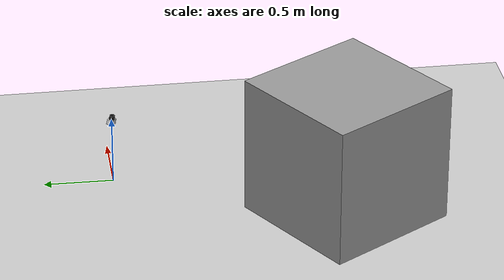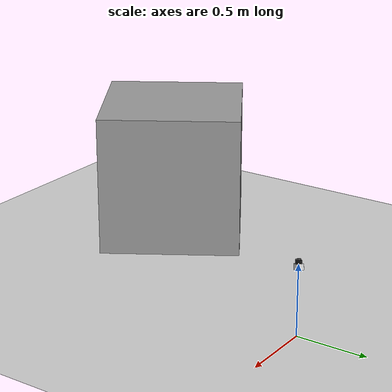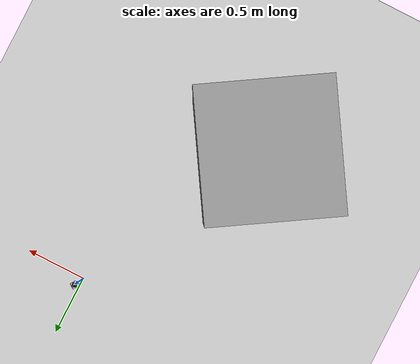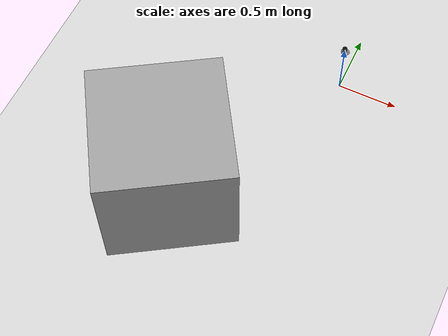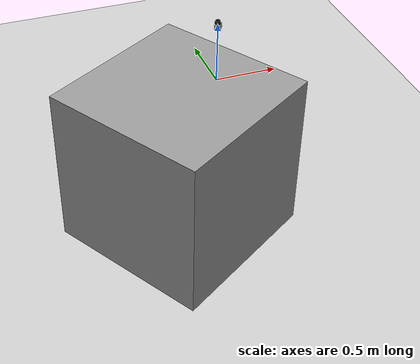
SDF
<?xml version="1.0" ?>
<sdf version="1.5">
  <world name="default">
    <include>
      <uri>model://sun</uri>
    </include>

    <include>
      <uri>model://ground_plane</uri>
    </include>

    <include>
      <uri>model://break_beam</uri>
      <pose>0 0 0.5 0.2 0 -0.6</pose>
    </include>
    <model name='unit_box'>
      <pose frame=''>-0.83 -1.55 0.6 1.57 0 0.557</pose>
      <link name='link'>
        <inertial>
          <mass>1</mass>
          <inertia>
            <ixx>0.166667</ixx>
            <ixy>0</ixy>
            <ixz>0</ixz>
            <iyy>0.166667</iyy>
            <iyz>0</iyz>
            <izz>0.166667</izz>
          </inertia>
        </inertial>
        <collision name='collision'>
          <geometry>
            <box>
              <size>0.999998 0.999998 0.999998</size>
            </box>
          </geometry>
          <max_contacts>10</max_contacts>
          <surface>
            <contact>
              <ode/>
            </contact>
            <bounce/>
            <friction>
              <torsional>
                <ode/>
              </torsional>
              <ode/>
            </friction>
          </surface>
        </collision>
        <visual name='visual'>
          <geometry>
            <box>
              <size>0.999998 0.999998 0.999998</size>
            </box>
          </geometry>
          <material>
            <script>
              <name>Gazebo/Grey</name>
              <uri>file://media/materials/scripts/gazebo.material</uri>
            </script>
          </material>
        </visual>
        <self_collide>0</self_collide>
        <kinematic>0</kinematic>
        <gravity>1</gravity>
      </link>
    </model>
  </world>
</sdf>

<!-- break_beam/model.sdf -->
<sdf version="1.6">
  <model name="proximity_sick_wl9l-3">
    <link name="link">
      <sensor name="break_beam" type="ray">
        <pose>0.025 0 0 0 0 0</pose>
        <plugin name="proximity_ray_plugin" filename="libROSProximityRayPlugin.so" >
          <robotNamespace>ariac</robotNamespace>
          <time_delay>0.05</time_delay><!-- this modifies the update rate of the ray sensor -->
        </plugin>
        <ray>
          <range>
            <min>0.0</min>
            <max>1.0</max> <!-- this represents the distance at which the reflector's placed. max 12m -->
            <resolution>0.001</resolution>
          </range>

          <!-- nothing below this line really needs to be modified upon change of sensor model -->

          <scan>
            <horizontal>
              <samples>1</samples>
              <resolution>1</resolution>
              <min_angle>0</min_angle>
              <max_angle>0</max_angle>
            </horizontal>
          </scan>
          <noise>
            <type>gaussian</type>
            <mean>0.0</mean>
            <stddev>0.01</stddev>
          </noise>
        </ray>

        <always_on>1</always_on>
        <visualize>true</visualize>
      </sensor>
      <gravity>false</gravity>
      <inertial>
        <mass>0.1</mass>
      </inertial>
      <visual name="visual">
        <geometry>
          <mesh>
            <uri>model://hokuyo/meshes/hokuyo.dae</uri>
          </mesh>
        </geometry>
      </visual>
      <collision name="collision">
        <geometry>
          <mesh>
            <uri>model://hokuyo/meshes/hokuyo.dae</uri>
          </mesh>
        </geometry>
      </collision>
    </link>
  </model>
</sdf>
